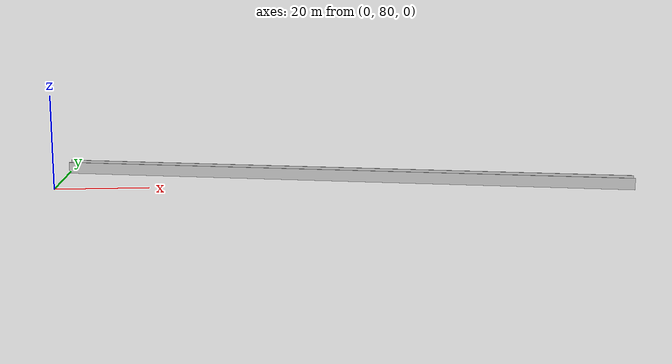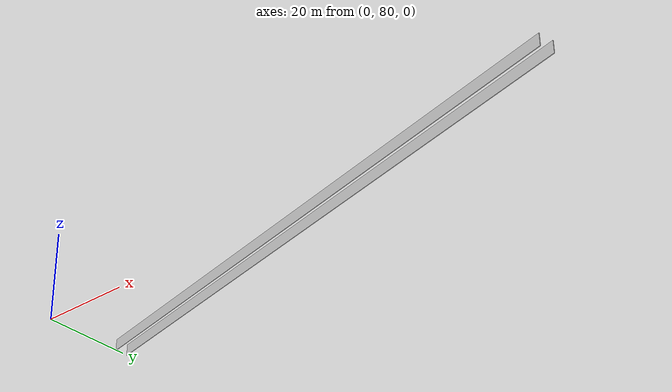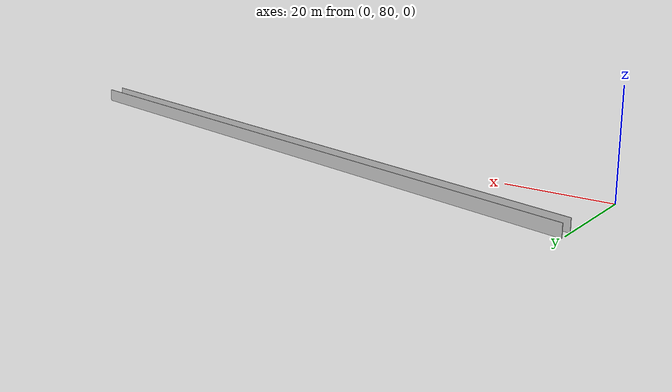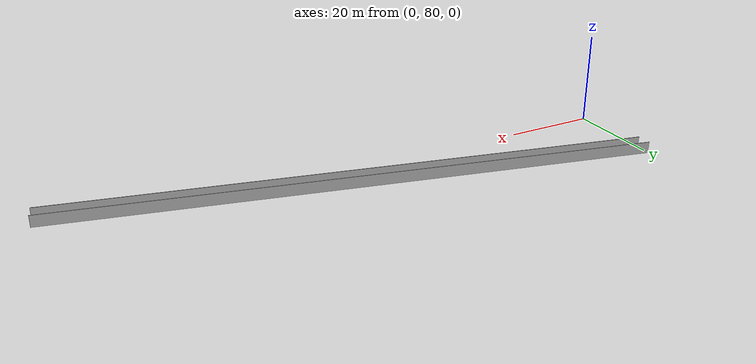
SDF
<?xml version="1.0" ?>
<sdf version="1.6">
  <model name="sps_0003">
    <pose frame="">0 0 0 0 -0 0</pose>
    <static>1</static>
    <self_collide>0</self_collide>
    <allow_auto_disable>0</allow_auto_disable>
    <link name="Wall2703">
      <kinematic>0</kinematic>
      <gravity>1</gravity>
      <self_collide>0</self_collide>
      <collision name="collision">
        <geometry>
          <box>
            <size>126.068 0.15 2.5</size>
          </box>
        </geometry>
        <pose frame="">0 0 0 0 -0 0</pose>
      </collision>
      <visual name="visual">
        <geometry>
          <box>
            <size>126.068 0.15 2.5</size>
          </box>
        </geometry>
        <pose frame="">0 0 0 0 -0 0</pose>
        <cast_shadows>1</cast_shadows>
        <transparency>0.0</transparency>
      </visual>
      <pose frame="">61.4778 84.1298 1.25 0 0 -0.22267</pose>
    </link>
    <link name="Wall3546">
      <kinematic>0</kinematic>
      <gravity>1</gravity>
      <self_collide>0</self_collide>
      <collision name="collision">
        <geometry>
          <box>
            <size>126.742 0.15 2.5</size>
          </box>
        </geometry>
        <pose frame="">0 0 0 0 -0 0</pose>
      </collision>
      <visual name="visual">
        <geometry>
          <box>
            <size>126.742 0.15 2.5</size>
          </box>
        </geometry>
        <pose frame="">0 0 0 0 -0 0</pose>
        <cast_shadows>1</cast_shadows>
        <transparency>0.0</transparency>
      </visual>
      <pose frame="">61.8062 87.1314 1.25 0 0 -0.22267</pose>
    </link>
  </model>
</sdf>
